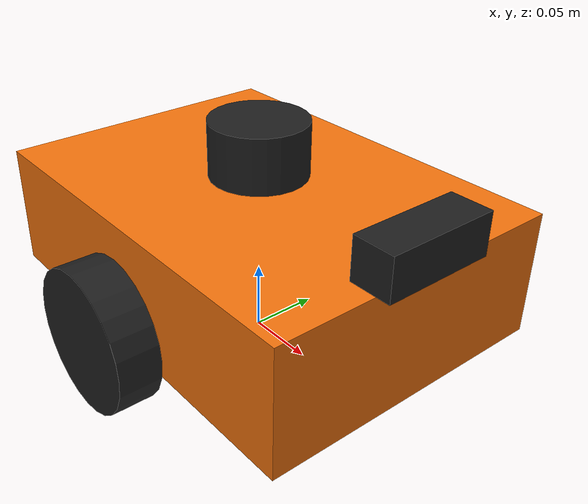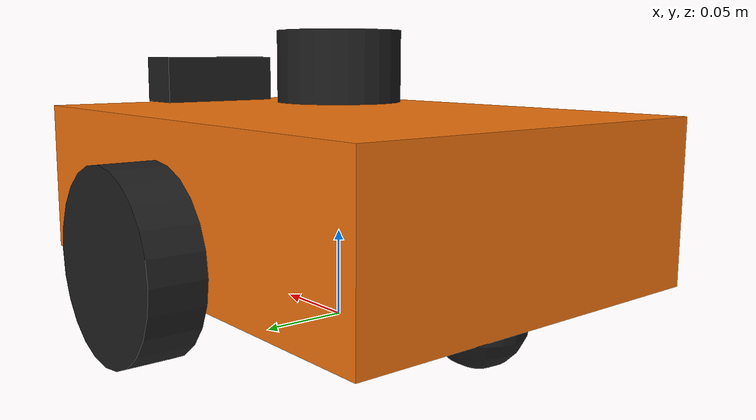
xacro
<?xml version="1.0"?>
<robot name="rescue_bot" xmlns:xacro="http://www.ros.org/wiki/xacro">
  <xacro:arg name="ns" default="r1"/>
  <xacro:property name="ns" value="$(arg ns)"/>

  <xacro:property name="base_l" value="0.30"/>
  <xacro:property name="base_w" value="0.22"/>
  <xacro:property name="base_h" value="0.09"/>
  <xacro:property name="base_z" value="0.075"/>   <!-- base_link centre above the floor -->
  <xacro:property name="wheel_r" value="0.05"/>
  <xacro:property name="wheel_w" value="0.03"/>
  <xacro:property name="wheel_sep" value="0.26"/>
  <xacro:property name="caster_r" value="0.025"/>

  <xacro:macro name="box_inertia" params="m x y z">
    <inertial><mass value="${m}"/>
      <inertia ixx="${m*(y*y+z*z)/12}" iyy="${m*(x*x+z*z)/12}" izz="${m*(x*x+y*y)/12}" ixy="0" ixz="0" iyz="0"/>
    </inertial>
  </xacro:macro>
  <xacro:macro name="cyl_inertia" params="m r h">
    <inertial><mass value="${m}"/>
      <inertia ixx="${m*(3*r*r+h*h)/12}" iyy="${m*(3*r*r+h*h)/12}" izz="${m*r*r/2}" ixy="0" ixz="0" iyz="0"/>
    </inertial>
  </xacro:macro>
  <xacro:macro name="sphere_inertia" params="m r">
    <inertial><mass value="${m}"/>
      <inertia ixx="${2*m*r*r/5}" iyy="${2*m*r*r/5}" izz="${2*m*r*r/5}" ixy="0" ixz="0" iyz="0"/>
    </inertial>
  </xacro:macro>

  <material name="body"><color rgba="0.95 0.45 0.05 1"/></material>
  <material name="dark"><color rgba="0.12 0.12 0.12 1"/></material>

  <!-- ===== chassis ===== -->
  <link name="base_footprint"/>

  <link name="base_link">
    <visual><geometry><box size="${base_l} ${base_w} ${base_h}"/></geometry><material name="body"/></visual>
    <collision><geometry><box size="${base_l} ${base_w} ${base_h}"/></geometry></collision>
    <xacro:box_inertia m="2.0" x="${base_l}" y="${base_w}" z="${base_h}"/>
  </link>
  <joint name="base_joint" type="fixed">
    <parent link="base_footprint"/><child link="base_link"/>
    <origin xyz="0 0 ${base_z}"/>
  </joint>

  <xacro:macro name="wheel" params="side y">
    <link name="${side}_wheel_link">
      <visual><geometry><cylinder radius="${wheel_r}" length="${wheel_w}"/></geometry><material name="dark"/></visual>
      <collision><geometry><cylinder radius="${wheel_r}" length="${wheel_w}"/></geometry></collision>
      <xacro:cyl_inertia m="0.2" r="${wheel_r}" h="${wheel_w}"/>
    </link>
    <!-- Wheel cylinder axis is its local z; rotated so it points along +y. -->
    <joint name="${side}_wheel_joint" type="continuous">
      <parent link="base_link"/><child link="${side}_wheel_link"/>
      <origin xyz="0 ${y} ${wheel_r - base_z}" rpy="${-pi/2} 0 0"/>
      <axis xyz="0 0 1"/>
    </joint>
    <gazebo reference="${side}_wheel_link"><mu1>1.0</mu1><mu2>1.0</mu2></gazebo>
  </xacro:macro>
  <xacro:wheel side="left" y="${wheel_sep/2}"/>
  <xacro:wheel side="right" y="${-wheel_sep/2}"/>

  <xacro:macro name="caster" params="name x">
    <link name="${name}_caster_link">
      <visual><geometry><sphere radius="${caster_r}"/></geometry><material name="dark"/></visual>
      <collision><geometry><sphere radius="${caster_r}"/></geometry></collision>
      <xacro:sphere_inertia m="0.05" r="${caster_r}"/>
    </link>
    <joint name="${name}_caster_joint" type="fixed">
      <parent link="base_link"/><child link="${name}_caster_link"/>
      <origin xyz="${x} 0 ${caster_r - base_z}"/>
    </joint>
    <gazebo reference="${name}_caster_link"><mu1>0.0</mu1><mu2>0.0</mu2></gazebo>
  </xacro:macro>
  <xacro:caster name="front" x="0.11"/>
  <xacro:caster name="rear" x="-0.11"/>

  <!-- ===== sensors ===== -->
  <link name="lidar_link">
    <visual><geometry><cylinder radius="0.035" length="0.04"/></geometry><material name="dark"/></visual>
    <collision><geometry><cylinder radius="0.035" length="0.04"/></geometry></collision>
    <xacro:cyl_inertia m="0.1" r="0.035" h="0.04"/>
  </link>
  <joint name="lidar_joint" type="fixed">
    <parent link="base_link"/><child link="lidar_link"/>
    <origin xyz="0.0 0 0.07"/>
  </joint>

  <link name="camera_link">
    <visual><geometry><box size="0.03 0.08 0.03"/></geometry><material name="dark"/></visual>
    <xacro:box_inertia m="0.05" x="0.03" y="0.08" z="0.03"/>
  </link>
  <joint name="camera_joint" type="fixed">
    <parent link="base_link"/><child link="camera_link"/>
    <origin xyz="0.145 0 0.06"/>
  </joint>
  <!-- ROS optical convention: z forward, x right, y down. -->
  <link name="camera_optical_frame"/>
  <joint name="camera_optical_joint" type="fixed">
    <parent link="camera_link"/><child link="camera_optical_frame"/>
    <origin rpy="${-pi/2} 0 ${-pi/2}"/>
  </joint>

  <link name="imu_link"/>
  <joint name="imu_joint" type="fixed">
    <parent link="base_link"/><child link="imu_link"/>
  </joint>

  <gazebo reference="lidar_link">
    <sensor name="lidar" type="gpu_lidar">
      <topic>/${ns}/scan</topic>
      <ignition_frame_id>${ns}/lidar_link</ignition_frame_id>
      <update_rate>10</update_rate>
      <always_on>true</always_on>
      <visualize>false</visualize>
      <lidar>
        <scan><horizontal>
          <samples>360</samples><resolution>1</resolution>
          <min_angle>-3.14159</min_angle><max_angle>3.12414</max_angle>
        </horizontal></scan>
        <range><min>0.12</min><max>12.0</max><resolution>0.01</resolution></range>
        <noise><type>gaussian</type><mean>0.0</mean><stddev>0.01</stddev></noise>
      </lidar>
    </sensor>
  </gazebo>

  <gazebo reference="camera_link">
    <sensor name="camera" type="camera">
      <topic>/${ns}/camera/image_raw</topic>
      <ignition_frame_id>${ns}/camera_optical_frame</ignition_frame_id>
      <update_rate>10</update_rate>
      <always_on>true</always_on>
      <camera>
        <horizontal_fov>1.2</horizontal_fov>
        <image><width>640</width><height>480</height><format>R8G8B8</format></image>
        <clip><near>0.05</near><far>25</far></clip>
        <noise><type>gaussian</type><mean>0.0</mean><stddev>0.005</stddev></noise>
      </camera>
    </sensor>
  </gazebo>

  <gazebo reference="imu_link">
    <sensor name="imu" type="imu">
      <topic>/${ns}/imu</topic>
      <ignition_frame_id>${ns}/imu_link</ignition_frame_id>
      <update_rate>50</update_rate>
      <always_on>true</always_on>
    </sensor>
  </gazebo>

  <!-- ===== actuation ===== -->
  <gazebo>
    <plugin filename="ignition-gazebo-diff-drive-system" name="ignition::gazebo::systems::DiffDrive">
      <left_joint>left_wheel_joint</left_joint>
      <right_joint>right_wheel_joint</right_joint>
      <wheel_separation>${wheel_sep}</wheel_separation>
      <wheel_radius>${wheel_r}</wheel_radius>
      <max_linear_velocity>0.6</max_linear_velocity>
      <min_linear_velocity>-0.6</min_linear_velocity>
      <max_angular_velocity>2.0</max_angular_velocity>
      <min_angular_velocity>-2.0</min_angular_velocity>
      <max_linear_acceleration>1.0</max_linear_acceleration>
      <min_linear_acceleration>-1.0</min_linear_acceleration>
      <topic>/${ns}/cmd_vel</topic>
      <odom_topic>/${ns}/odom</odom_topic>
      <tf_topic>/${ns}/tf</tf_topic>
      <frame_id>${ns}/odom</frame_id>
      <child_frame_id>${ns}/base_footprint</child_frame_id>
      <odom_publish_frequency>30</odom_publish_frequency>
    </plugin>
    <plugin filename="ignition-gazebo-joint-state-publisher-system"
            name="ignition::gazebo::systems::JointStatePublisher">
      <topic>/${ns}/joint_states</topic>
    </plugin>
  </gazebo>
</robot>
